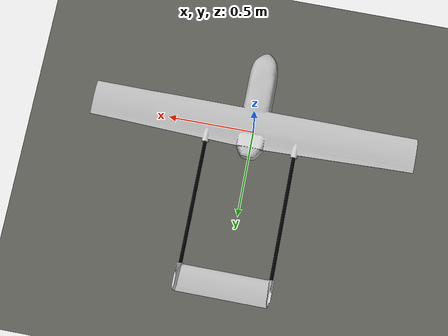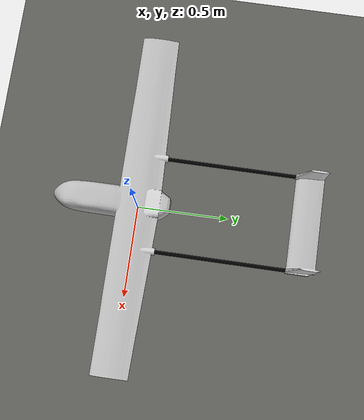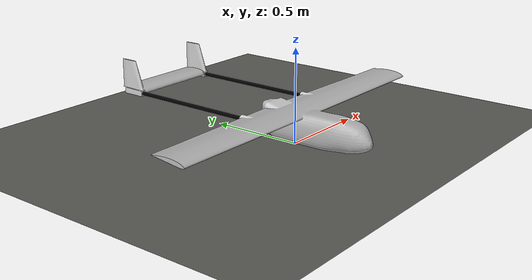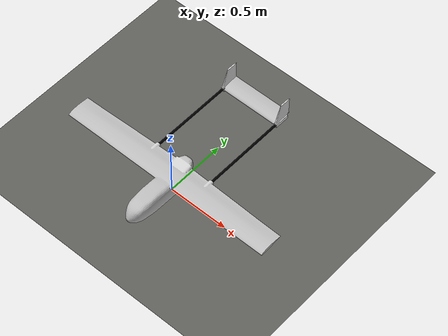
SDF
<sdf version='1.10'>
  <world name='default'>
    <plugin name='gz::sim::systems::SceneBroadcaster' filename='gz-sim-scene-broadcaster-system'/>
    <plugin name='gz::sim::systems::UserCommands' filename='gz-sim-user-commands-system'/>
    <plugin name='gz::sim::systems::Physics' filename='gz-sim-physics-system'>
      <engine>
        <filename>gz-physics-dartsim-plugin</filename>
      </engine>
    </plugin>
    <plugin name='gz::sim::systems::TriggeredPublisher' filename='gz-sim-triggered-publisher-system'>
      <input type='gz.msgs.WorldStatistics' topic='/stats'/>
      <output type='gz.msgs.CameraTrack' topic='/gui/track'>
        track_mode: FOLLOW
        follow_target {
          name: "robot"
          type: MODEL
        }
        follow_offset {
          x: -3
          y: 0
          z: 0.6
        }
        follow_pgain: 1.0
        track_pgain: 1.0
      </output>
    </plugin>
    <scene>
      <sky>
        <clouds>
          <speed>3</speed>
        </clouds>
      </sky>
      <ambient>0.400000006 0.400000006 0.400000006 1</ambient>
      <background>0.699999988 0.699999988 0.699999988 1</background>
      <shadows>true</shadows>
    </scene>
    <gravity>0 0 -9.8100000000000005</gravity>
    <physics name='default_physics' type='ode'>
      <ode>
        <solver>
          <type>world</type>
          <iters>100</iters>
          <sor>1</sor>
          <use_dynamic_moi_rescaling>false</use_dynamic_moi_rescaling>
        </solver>
        <constraints>
          <cfm>0</cfm>
          <erp>0.20000000000000001</erp>
          <contact_max_correcting_vel>0.10000000000000001</contact_max_correcting_vel>
          <contact_surface_layer>0</contact_surface_layer>
        </constraints>
      </ode>
      <real_time_factor>1</real_time_factor>
      <max_step_size>0.0025000000000000001</max_step_size>
      <real_time_update_rate>400</real_time_update_rate>
    </physics>
    <magnetic_field>5.5644999999999998e-06 2.2875799999999999e-05 -4.2388400000000002e-05</magnetic_field>
    <atmosphere type='adiabatic'/>
    <model name='ground_plane'>
      <static>true</static>
      <link name='link'>
        <collision name='collision'>
          <geometry>
            <plane>
              <normal>0 0 1</normal>
              <size>5000 5000</size>
            </plane>
          </geometry>
          <surface>
            <friction>
              <ode>
                <mu>0.10000000000000001</mu>
                <mu2>0.10000000000000001</mu2>
              </ode>
            </friction>
            <bounce/>
            <contact/>
          </surface>
        </collision>
        <visual name='runway'>
          <pose>0 0 0.0050000000000000001 0 0 -1.5707</pose>
          <cast_shadows>false</cast_shadows>
          <geometry>
            <plane>
              <normal>0 0 1</normal>
              <size>1829 45</size>
            </plane>
          </geometry>
          <material>
            <ambient>0.290000000 0.290000000 0.270000000 1</ambient>
            <diffuse>0.360000000 0.360000000 0.340000000 1</diffuse>
            <specular>0.080000000 0.080000000 0.080000000 1</specular>
          </material>
        </visual>
        <visual name='grass'>
          <pose>0 0 0 0 0 0</pose>
          <cast_shadows>false</cast_shadows>
          <geometry>
            <plane>
              <normal>0 0 1</normal>
              <size>5000 5000</size>
            </plane>
          </geometry>
          <material>
            <ambient>0.110000000 0.260000000 0.070000000 1</ambient>
            <diffuse>0.160000000 0.470000000 0.100000000 1</diffuse>
          </material>
        </visual>
        <visual name='grass_mowed_band_0'>
          <pose>-1800 0 0.001 0 0 0</pose>
          <cast_shadows>false</cast_shadows>
          <geometry>
            <plane>
              <normal>0 0 1</normal>
              <size>160 5000</size>
            </plane>
          </geometry>
          <material>
            <ambient>0.080000000 0.210000000 0.060000000 1</ambient>
            <diffuse>0.120000000 0.390000000 0.090000000 1</diffuse>
          </material>
        </visual>
        <visual name='grass_mowed_band_1'>
          <pose>-1440 0 0.001 0 0 0</pose>
          <cast_shadows>false</cast_shadows>
          <geometry>
            <plane>
              <normal>0 0 1</normal>
              <size>160 5000</size>
            </plane>
          </geometry>
          <material>
            <ambient>0.080000000 0.210000000 0.060000000 1</ambient>
            <diffuse>0.120000000 0.390000000 0.090000000 1</diffuse>
          </material>
        </visual>
        <visual name='grass_mowed_band_2'>
          <pose>-1080 0 0.001 0 0 0</pose>
          <cast_shadows>false</cast_shadows>
          <geometry>
            <plane>
              <normal>0 0 1</normal>
              <size>160 5000</size>
            </plane>
          </geometry>
          <material>
            <ambient>0.080000000 0.210000000 0.060000000 1</ambient>
            <diffuse>0.120000000 0.390000000 0.090000000 1</diffuse>
          </material>
        </visual>
        <visual name='grass_mowed_band_3'>
          <pose>-720 0 0.001 0 0 0</pose>
          <cast_shadows>false</cast_shadows>
          <geometry>
            <plane>
              <normal>0 0 1</normal>
              <size>160 5000</size>
            </plane>
          </geometry>
          <material>
            <ambient>0.080000000 0.210000000 0.060000000 1</ambient>
            <diffuse>0.120000000 0.390000000 0.090000000 1</diffuse>
          </material>
        </visual>
        <visual name='grass_mowed_band_4'>
          <pose>-360 0 0.001 0 0 0</pose>
          <cast_shadows>false</cast_shadows>
          <geometry>
            <plane>
              <normal>0 0 1</normal>
              <size>160 5000</size>
            </plane>
          </geometry>
          <material>
            <ambient>0.080000000 0.210000000 0.060000000 1</ambient>
            <diffuse>0.120000000 0.390000000 0.090000000 1</diffuse>
          </material>
        </visual>
        <visual name='grass_mowed_band_5'>
          <pose>360 0 0.001 0 0 0</pose>
          <cast_shadows>false</cast_shadows>
          <geometry>
            <plane>
              <normal>0 0 1</normal>
              <size>160 5000</size>
            </plane>
          </geometry>
          <material>
            <ambient>0.080000000 0.210000000 0.060000000 1</ambient>
            <diffuse>0.120000000 0.390000000 0.090000000 1</diffuse>
          </material>
        </visual>
        <visual name='grass_mowed_band_6'>
          <pose>720 0 0.001 0 0 0</pose>
          <cast_shadows>false</cast_shadows>
          <geometry>
            <plane>
              <normal>0 0 1</normal>
              <size>160 5000</size>
            </plane>
          </geometry>
          <material>
            <ambient>0.080000000 0.210000000 0.060000000 1</ambient>
            <diffuse>0.120000000 0.390000000 0.090000000 1</diffuse>
          </material>
        </visual>
        <visual name='grass_mowed_band_7'>
          <pose>1080 0 0.001 0 0 0</pose>
          <cast_shadows>false</cast_shadows>
          <geometry>
            <plane>
              <normal>0 0 1</normal>
              <size>160 5000</size>
            </plane>
          </geometry>
          <material>
            <ambient>0.080000000 0.210000000 0.060000000 1</ambient>
            <diffuse>0.120000000 0.390000000 0.090000000 1</diffuse>
          </material>
        </visual>
        <visual name='grass_mowed_band_8'>
          <pose>1440 0 0.001 0 0 0</pose>
          <cast_shadows>false</cast_shadows>
          <geometry>
            <plane>
              <normal>0 0 1</normal>
              <size>160 5000</size>
            </plane>
          </geometry>
          <material>
            <ambient>0.080000000 0.210000000 0.060000000 1</ambient>
            <diffuse>0.120000000 0.390000000 0.090000000 1</diffuse>
          </material>
        </visual>
        <visual name='grass_mowed_band_9'>
          <pose>1800 0 0.001 0 0 0</pose>
          <cast_shadows>false</cast_shadows>
          <geometry>
            <plane>
              <normal>0 0 1</normal>
              <size>160 5000</size>
            </plane>
          </geometry>
          <material>
            <ambient>0.080000000 0.210000000 0.060000000 1</ambient>
            <diffuse>0.120000000 0.390000000 0.090000000 1</diffuse>
          </material>
        </visual>
        <visual name='grass_cross_band_0'>
          <pose>0 -2000 0.002 0 0 0</pose>
          <cast_shadows>false</cast_shadows>
          <geometry>
            <plane>
              <normal>0 0 1</normal>
              <size>5000 90</size>
            </plane>
          </geometry>
          <material>
            <ambient>0.120000000 0.300000000 0.080000000 1</ambient>
            <diffuse>0.180000000 0.520000000 0.120000000 1</diffuse>
          </material>
        </visual>
        <visual name='grass_cross_band_1'>
          <pose>0 -1600 0.002 0 0 0</pose>
          <cast_shadows>false</cast_shadows>
          <geometry>
            <plane>
              <normal>0 0 1</normal>
              <size>5000 90</size>
            </plane>
          </geometry>
          <material>
            <ambient>0.120000000 0.300000000 0.080000000 1</ambient>
            <diffuse>0.180000000 0.520000000 0.120000000 1</diffuse>
          </material>
        </visual>
        <visual name='grass_cross_band_2'>
          <pose>0 -1200 0.002 0 0 0</pose>
          <cast_shadows>false</cast_shadows>
          <geometry>
            <plane>
              <normal>0 0 1</normal>
              <size>5000 90</size>
            </plane>
          </geometry>
          <material>
            <ambient>0.120000000 0.300000000 0.080000000 1</ambient>
            <diffuse>0.180000000 0.520000000 0.120000000 1</diffuse>
          </material>
        </visual>
        <visual name='grass_cross_band_3'>
          <pose>0 -800 0.002 0 0 0</pose>
          <cast_shadows>false</cast_shadows>
          <geometry>
            <plane>
              <normal>0 0 1</normal>
              <size>5000 90</size>
            </plane>
          </geometry>
          <material>
            <ambient>0.120000000 0.300000000 0.080000000 1</ambient>
            <diffuse>0.180000000 0.520000000 0.120000000 1</diffuse>
          </material>
        </visual>
        <visual name='grass_cross_band_4'>
          <pose>0 -400 0.002 0 0 0</pose>
          <cast_shadows>false</cast_shadows>
          <geometry>
            <plane>
              <normal>0 0 1</normal>
              <size>5000 90</size>
            </plane>
          </geometry>
          <material>
            <ambient>0.120000000 0.300000000 0.080000000 1</ambient>
            <diffuse>0.180000000 0.520000000 0.120000000 1</diffuse>
          </material>
        </visual>
        <visual name='grass_cross_band_5'>
          <pose>0 400 0.002 0 0 0</pose>
          <cast_shadows>false</cast_shadows>
          <geometry>
            <plane>
              <normal>0 0 1</normal>
              <size>5000 90</size>
            </plane>
          </geometry>
          <material>
            <ambient>0.120000000 0.300000000 0.080000000 1</ambient>
            <diffuse>0.180000000 0.520000000 0.120000000 1</diffuse>
          </material>
        </visual>
        <visual name='grass_cross_band_6'>
          <pose>0 800 0.002 0 0 0</pose>
          <cast_shadows>false</cast_shadows>
          <geometry>
            <plane>
              <normal>0 0 1</normal>
              <size>5000 90</size>
            </plane>
          </geometry>
          <material>
            <ambient>0.120000000 0.300000000 0.080000000 1</ambient>
            <diffuse>0.180000000 0.520000000 0.120000000 1</diffuse>
          </material>
        </visual>
        <visual name='grass_cross_band_7'>
          <pose>0 1200 0.002 0 0 0</pose>
          <cast_shadows>false</cast_shadows>
          <geometry>
            <plane>
              <normal>0 0 1</normal>
              <size>5000 90</size>
            </plane>
          </geometry>
          <material>
            <ambient>0.120000000 0.300000000 0.080000000 1</ambient>
            <diffuse>0.180000000 0.520000000 0.120000000 1</diffuse>
          </material>
        </visual>
        <visual name='grass_cross_band_8'>
          <pose>0 1600 0.002 0 0 0</pose>
          <cast_shadows>false</cast_shadows>
          <geometry>
            <plane>
              <normal>0 0 1</normal>
              <size>5000 90</size>
            </plane>
          </geometry>
          <material>
            <ambient>0.120000000 0.300000000 0.080000000 1</ambient>
            <diffuse>0.180000000 0.520000000 0.120000000 1</diffuse>
          </material>
        </visual>
        <visual name='grass_cross_band_9'>
          <pose>0 2000 0.002 0 0 0</pose>
          <cast_shadows>false</cast_shadows>
          <geometry>
            <plane>
              <normal>0 0 1</normal>
              <size>5000 90</size>
            </plane>
          </geometry>
          <material>
            <ambient>0.120000000 0.300000000 0.080000000 1</ambient>
            <diffuse>0.180000000 0.520000000 0.120000000 1</diffuse>
          </material>
        </visual>
        <visual name='runway_left_edge_line'>
          <pose>-20.5 0 0.008 0 0 0</pose>
          <cast_shadows>false</cast_shadows>
          <geometry>
            <plane>
              <normal>0 0 1</normal>
              <size>1 1829</size>
            </plane>
          </geometry>
          <material>
            <ambient>0.800000000 0.800000000 0.740000000 1</ambient>
            <diffuse>0.940000000 0.940000000 0.860000000 1</diffuse>
          </material>
        </visual>
        <visual name='runway_right_edge_line'>
          <pose>20.5 0 0.008 0 0 0</pose>
          <cast_shadows>false</cast_shadows>
          <geometry>
            <plane>
              <normal>0 0 1</normal>
              <size>1 1829</size>
            </plane>
          </geometry>
          <material>
            <ambient>0.800000000 0.800000000 0.740000000 1</ambient>
            <diffuse>0.940000000 0.940000000 0.860000000 1</diffuse>
          </material>
        </visual>
        <visual name='runway_centerline_dash_0'>
          <pose>0 -780 0.009 0 0 0</pose>
          <cast_shadows>false</cast_shadows>
          <geometry>
            <plane>
              <normal>0 0 1</normal>
              <size>1.5 35</size>
            </plane>
          </geometry>
          <material>
            <ambient>0.800000000 0.800000000 0.740000000 1</ambient>
            <diffuse>0.940000000 0.940000000 0.860000000 1</diffuse>
          </material>
        </visual>
        <visual name='runway_centerline_dash_1'>
          <pose>0 -600 0.009 0 0 0</pose>
          <cast_shadows>false</cast_shadows>
          <geometry>
            <plane>
              <normal>0 0 1</normal>
              <size>1.5 35</size>
            </plane>
          </geometry>
          <material>
            <ambient>0.800000000 0.800000000 0.740000000 1</ambient>
            <diffuse>0.940000000 0.940000000 0.860000000 1</diffuse>
          </material>
        </visual>
        <visual name='runway_centerline_dash_2'>
          <pose>0 -420 0.009 0 0 0</pose>
          <cast_shadows>false</cast_shadows>
          <geometry>
            <plane>
              <normal>0 0 1</normal>
              <size>1.5 35</size>
            </plane>
          </geometry>
          <material>
            <ambient>0.800000000 0.800000000 0.740000000 1</ambient>
            <diffuse>0.940000000 0.940000000 0.860000000 1</diffuse>
          </material>
        </visual>
        <visual name='runway_centerline_dash_3'>
          <pose>0 -240 0.009 0 0 0</pose>
          <cast_shadows>false</cast_shadows>
          <geometry>
            <plane>
              <normal>0 0 1</normal>
              <size>1.5 35</size>
            </plane>
          </geometry>
          <material>
            <ambient>0.800000000 0.800000000 0.740000000 1</ambient>
            <diffuse>0.940000000 0.940000000 0.860000000 1</diffuse>
          </material>
        </visual>
        <visual name='runway_centerline_dash_4'>
          <pose>0 -60 0.009 0 0 0</pose>
          <cast_shadows>false</cast_shadows>
          <geometry>
            <plane>
              <normal>0 0 1</normal>
              <size>1.5 35</size>
            </plane>
          </geometry>
          <material>
            <ambient>0.800000000 0.800000000 0.740000000 1</ambient>
            <diffuse>0.940000000 0.940000000 0.860000000 1</diffuse>
          </material>
        </visual>
        <visual name='runway_centerline_dash_5'>
          <pose>0 120 0.009 0 0 0</pose>
          <cast_shadows>false</cast_shadows>
          <geometry>
            <plane>
              <normal>0 0 1</normal>
              <size>1.5 35</size>
            </plane>
          </geometry>
          <material>
            <ambient>0.800000000 0.800000000 0.740000000 1</ambient>
            <diffuse>0.940000000 0.940000000 0.860000000 1</diffuse>
          </material>
        </visual>
        <visual name='runway_centerline_dash_6'>
          <pose>0 300 0.009 0 0 0</pose>
          <cast_shadows>false</cast_shadows>
          <geometry>
            <plane>
              <normal>0 0 1</normal>
              <size>1.5 35</size>
            </plane>
          </geometry>
          <material>
            <ambient>0.800000000 0.800000000 0.740000000 1</ambient>
            <diffuse>0.940000000 0.940000000 0.860000000 1</diffuse>
          </material>
        </visual>
        <visual name='runway_centerline_dash_7'>
          <pose>0 480 0.009 0 0 0</pose>
          <cast_shadows>false</cast_shadows>
          <geometry>
            <plane>
              <normal>0 0 1</normal>
              <size>1.5 35</size>
            </plane>
          </geometry>
          <material>
            <ambient>0.800000000 0.800000000 0.740000000 1</ambient>
            <diffuse>0.940000000 0.940000000 0.860000000 1</diffuse>
          </material>
        </visual>
        <visual name='runway_centerline_dash_8'>
          <pose>0 660 0.009 0 0 0</pose>
          <cast_shadows>false</cast_shadows>
          <geometry>
            <plane>
              <normal>0 0 1</normal>
              <size>1.5 35</size>
            </plane>
          </geometry>
          <material>
            <ambient>0.800000000 0.800000000 0.740000000 1</ambient>
            <diffuse>0.940000000 0.940000000 0.860000000 1</diffuse>
          </material>
        </visual>
        <visual name='runway_centerline_dash_9'>
          <pose>0 840 0.009 0 0 0</pose>
          <cast_shadows>false</cast_shadows>
          <geometry>
            <plane>
              <normal>0 0 1</normal>
              <size>1.5 35</size>
            </plane>
          </geometry>
          <material>
            <ambient>0.800000000 0.800000000 0.740000000 1</ambient>
            <diffuse>0.940000000 0.940000000 0.860000000 1</diffuse>
          </material>
        </visual>
        <pose>0 0 0 0 0 0</pose>
        <inertial>
          <pose>0 0 0 0 0 0</pose>
          <mass>1</mass>
          <inertia>
            <ixx>1</ixx>
            <ixy>0</ixy>
            <ixz>0</ixz>
            <iyy>1</iyy>
            <iyz>0</iyz>
            <izz>1</izz>
          </inertia>
        </inertial>
        <enable_wind>false</enable_wind>
      </link>
      <pose>0 0 0 0 0 0</pose>
      <self_collide>false</self_collide>
    </model>
    <model name='robot'>
      <link name='fixedwing/base_link'>
        <inertial>
          <pose>0 0 0 0 0 0</pose>
          <mass>4.5</mass>
          <inertia>
            <ixx>0.24854999999999999</ixx>
            <ixy>0</ixy>
            <ixz>0.040000000000000001</ixz>
            <iyy>0.37840000000000001</iyy>
            <iyz>0</iyz>
            <izz>0.61799999999999999</izz>
          </inertia>
        </inertial>
        <collision name='fixedwing/base_link_fixed_joint_lump__plane_collision_collision'>
          <pose>0 0 0 0 0 0</pose>
          <geometry>
            <cylinder>
              <length>0.17780000000000001</length>
              <radius>1.8</radius>
            </cylinder>
          </geometry>
          <surface>
            <friction>
              <ode/>
            </friction>
            <bounce/>
            <contact/>
          </surface>
        </collision>
        <visual name='fixedwing/base_link_fixed_joint_lump__plane_visual_visual'>
          <pose>0 0 0 0 0 1.5707959999999999</pose>
          <geometry>
            <mesh>
              <scale>1 1 1</scale>
              <uri>file:///home/iandareid/repos/rosflight_ws/install/rosflight_sim/share/rosflight_sim/common_resource/skyhunter.dae</uri>
            </mesh>
          </geometry>
        </visual>
        <pose>0 0 0 0 0 0</pose>
        <enable_wind>false</enable_wind>
      </link>
      <plugin name='rosflight_sim::GazeboDynamicsSystem' filename='libgz_sim_dynamics_system.so'>
        <link_name>fixedwing/base_link</link_name>
        <mav_type>fixedwing</mav_type>
        <parentFrameId>fixedwing/base_link</parentFrameId>
      </plugin>
      <pose>3.9897814268603798e-18 2.8841661274476895e-19 0.088899175695993635 -8.8218868537710505e-19 2.7042778058278428e-17 -1.5731853071795863</pose>
      <static>false</static>
      <self_collide>false</self_collide>
    </model>
    <light name='sun' type='directional'>
      <pose>0 0 10 0 0 0</pose>
      <cast_shadows>true</cast_shadows>
      <intensity>1</intensity>
      <direction>-0.5 0.10000000000000001 -0.90000000000000002</direction>
      <diffuse>0.800000012 0.800000012 0.800000012 1</diffuse>
      <specular>0.200000003 0.200000003 0.200000003 1</specular>
      <attenuation>
        <range>1000</range>
        <linear>0.01</linear>
        <constant>0.90000000000000002</constant>
        <quadratic>0.001</quadratic>
      </attenuation>
      <spot>
        <inner_angle>0</inner_angle>
        <outer_angle>0</outer_angle>
        <falloff>0</falloff>
      </spot>
    </light>
  </world>
</sdf>
